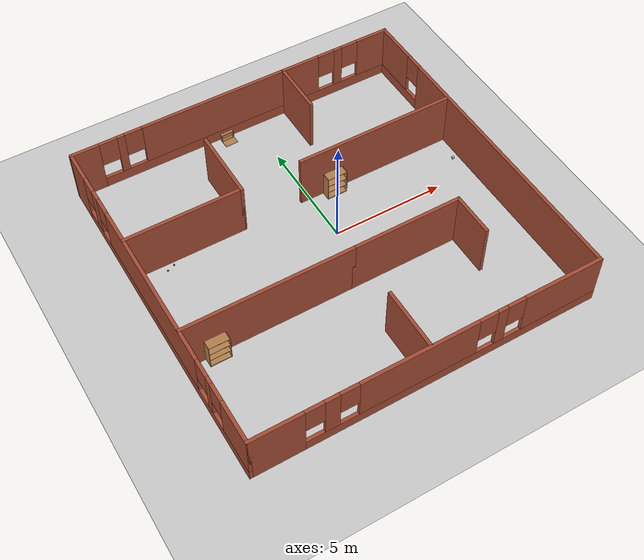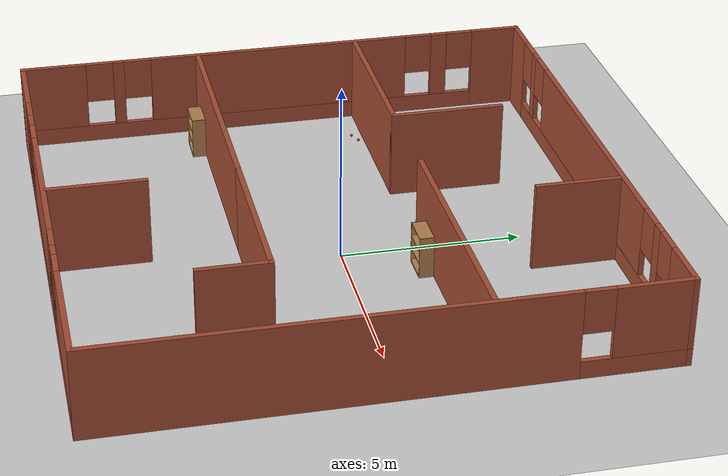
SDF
<sdf version="1.7">
 <world name="default">
  <model name="Untitled">
   <pose>-0.70055 -0.259285 0 0 -0 0</pose>
   <link name="Wall_0">
    <pose>-7.55 0 0 0 -0 -1.5708</pose>
    <visual name="Wall_0_Visual_0">
     <pose>-6.87927 0 1.25 0 -0 0</pose>
     <geometry><box><size>1.49145 0.15 2.5</size></box></geometry>
     <material>
      <script><uri>file://media/materials/scripts/gazebo.material</uri><name>Gazebo/Bricks</name></script>
      <ambient>1 1 1 1</ambient>
     </material>
     <meta><layer>0</layer></meta>
    </visual>
    <collision name="Wall_0_Collision_0">
     <geometry><box><size>1.49145 0.15 2.5</size></box></geometry>
     <pose>-6.87927 0 1.25 0 -0 0</pose>
    </collision>
    <visual name="Wall_0_Visual_1">
     <pose>0.745725 0 0.25 0 -0 0</pose>
     <geometry><box><size>13.7586 0.15 0.5</size></box></geometry>
     <material>
      <script><uri>file://media/materials/scripts/gazebo.material</uri><name>Gazebo/Bricks</name></script>
      <ambient>1 1 1 1</ambient>
     </material>
     <meta><layer>0</layer></meta>
    </visual>
    <collision name="Wall_0_Collision_1">
     <geometry><box><size>13.7586 0.15 0.5</size></box></geometry>
     <pose>0.745725 0 0.25 0 -0 0</pose>
    </collision>
    <visual name="Wall_0_Visual_2">
     <pose>-5.08626 0 1.5 0 -0 0</pose>
     <geometry><box><size>0.494579 0.15 2</size></box></geometry>
     <material>
      <script><uri>file://media/materials/scripts/gazebo.material</uri><name>Gazebo/Bricks</name></script>
      <ambient>1 1 1 1</ambient>
     </material>
     <meta><layer>0</layer></meta>
    </visual>
    <collision name="Wall_0_Collision_2">
     <geometry><box><size>0.494579 0.15 2</size></box></geometry>
     <pose>-5.08626 0 1.5 0 -0 0</pose>
    </collision>
    <visual name="Wall_0_Visual_3">
     <pose>-0.130454 0 1.5 0 -0 0</pose>
     <geometry><box><size>7.81704 0.15 2</size></box></geometry>
     <material>
      <script><uri>file://media/materials/scripts/gazebo.material</uri><name>Gazebo/Bricks</name></script>
      <ambient>1 1 1 1</ambient>
     </material>
     <meta><layer>0</layer></meta>
    </visual>
    <collision name="Wall_0_Collision_3">
     <geometry><box><size>7.81704 0.15 2</size></box></geometry>
     <pose>-0.130454 0 1.5 0 -0 0</pose>
    </collision>
    <visual name="Wall_0_Visual_4">
     <pose>4.74444 0 1.5 0 -0 0</pose>
     <geometry><box><size>0.332756 0.15 2</size></box></geometry>
     <material>
      <script><uri>file://media/materials/scripts/gazebo.material</uri><name>Gazebo/Bricks</name></script>
      <ambient>1 1 1 1</ambient>
     </material>
     <meta><layer>0</layer></meta>
    </visual>
    <collision name="Wall_0_Collision_4">
     <geometry><box><size>0.332756 0.15 2</size></box></geometry>
     <pose>4.74444 0 1.5 0 -0 0</pose>
    </collision>
    <visual name="Wall_0_Visual_5">
     <pose>6.66791 0 1.5 0 -0 0</pose>
     <geometry><box><size>1.91418 0.15 2</size></box></geometry>
     <material>
      <script><uri>file://media/materials/scripts/gazebo.material</uri><name>Gazebo/Bricks</name></script>
      <ambient>1 1 1 1</ambient>
     </material>
     <meta><layer>0</layer></meta>
    </visual>
    <collision name="Wall_0_Collision_5">
     <geometry><box><size>1.91418 0.15 2</size></box></geometry>
     <pose>6.66791 0 1.5 0 -0 0</pose>
    </collision>
    <visual name="Wall_0_Visual_6">
     <pose>-5.73355 0 1.9 0 -0 0</pose>
     <geometry><box><size>0.8 0.15 1.2</size></box></geometry>
     <material>
      <script><uri>file://media/materials/scripts/gazebo.material</uri><name>Gazebo/Bricks</name></script>
      <ambient>1 1 1 1</ambient>
     </material>
     <meta><layer>0</layer></meta>
    </visual>
    <collision name="Wall_0_Collision_6">
     <geometry><box><size>0.8 0.15 1.2</size></box></geometry>
     <pose>-5.73355 0 1.9 0 -0 0</pose>
    </collision>
    <visual name="Wall_0_Visual_7">
     <pose>-4.43897 0 1.9 0 -0 0</pose>
     <geometry><box><size>0.8 0.15 1.2</size></box></geometry>
     <material>
      <script><uri>file://media/materials/scripts/gazebo.material</uri><name>Gazebo/Bricks</name></script>
      <ambient>1 1 1 1</ambient>
     </material>
     <meta><layer>0</layer></meta>
    </visual>
    <collision name="Wall_0_Collision_7">
     <geometry><box><size>0.8 0.15 1.2</size></box></geometry>
     <pose>-4.43897 0 1.9 0 -0 0</pose>
    </collision>
    <visual name="Wall_0_Visual_8">
     <pose>4.17807 0 1.9 0 -0 0</pose>
     <geometry><box><size>0.8 0.15 1.2</size></box></geometry>
     <material>
      <script><uri>file://media/materials/scripts/gazebo.material</uri><name>Gazebo/Bricks</name></script>
      <ambient>1 1 1 1</ambient>
     </material>
     <meta><layer>0</layer></meta>
    </visual>
    <collision name="Wall_0_Collision_8">
     <geometry><box><size>0.8 0.15 1.2</size></box></geometry>
     <pose>4.17807 0 1.9 0 -0 0</pose>
    </collision>
    <visual name="Wall_0_Visual_9">
     <pose>5.31082 0 1.9 0 -0 0</pose>
     <geometry><box><size>0.8 0.15 1.2</size></box></geometry>
     <material>
      <script><uri>file://media/materials/scripts/gazebo.material</uri><name>Gazebo/Bricks</name></script>
      <ambient>1 1 1 1</ambient>
     </material>
     <meta><layer>0</layer></meta>
    </visual>
    <collision name="Wall_0_Collision_9">
     <geometry><box><size>0.8 0.15 1.2</size></box></geometry>
     <pose>5.31082 0 1.9 0 -0 0</pose>
    </collision>
   </link>
   <link name="Wall_11">
    <collision name="Wall_11_Collision">
     <geometry><box><size>2.5 0.15 2.5</size></box></geometry>
     <pose>0 0 1.25 0 -0 0</pose>
    </collision>
    <visual name="Wall_11_Visual">
     <pose>0 0 1.25 0 -0 0</pose>
     <geometry><box><size>2.5 0.15 2.5</size></box></geometry>
     <material>
      <script><uri>file://media/materials/scripts/gazebo.material</uri><name>Gazebo/Bricks</name></script>
      <ambient>1 1 1 1</ambient>
     </material>
     <meta><layer>0</layer></meta>
    </visual>
    <pose>2.33157 6.36777 0 0 -0 -1.5708</pose>
   </link>
   <link name="Wall_13">
    <collision name="Wall_13_Collision">
     <geometry><box><size>7.25 0.15 2.5</size></box></geometry>
     <pose>0 0 1.25 0 -0 0</pose>
    </collision>
    <visual name="Wall_13_Visual">
     <pose>0 0 1.25 0 -0 0</pose>
     <geometry><box><size>7.25 0.15 2.5</size></box></geometry>
     <material>
      <script><uri>file://media/materials/scripts/gazebo.material</uri><name>Gazebo/Bricks</name></script>
      <ambient>1 1 1 1</ambient>
     </material>
     <meta><layer>0</layer></meta>
    </visual>
    <pose>3.89013 2.52597 0 0 -0 3.14159</pose>
   </link>
   <link name="Wall_15">
    <collision name="Wall_15_Collision">
     <geometry><box><size>7.5 0.15 2.5</size></box></geometry>
     <pose>0 0 1.25 0 -0 0</pose>
    </collision>
    <visual name="Wall_15_Visual">
     <pose>0 0 1.25 0 -0 0</pose>
     <geometry><box><size>7.5 0.15 2.5</size></box></geometry>
     <material>
      <script><uri>file://media/materials/scripts/gazebo.material</uri><name>Gazebo/Bricks</name></script>
      <ambient>1 1 1 1</ambient>
     </material>
     <meta><layer>0</layer></meta>
    </visual>
    <pose>-3.84578 -2.35756 0 0 -0 0</pose>
   </link>
   <link name="Wall_17">
    <collision name="Wall_17_Collision">
     <geometry><box><size>2.75 0.15 2.5</size></box></geometry>
     <pose>0 0 1.25 0 -0 0</pose>
    </collision>
    <visual name="Wall_17_Visual">
     <pose>0 0 1.25 0 -0 0</pose>
     <geometry><box><size>2.75 0.15 2.5</size></box></geometry>
     <material>
      <script><uri>file://media/materials/scripts/gazebo.material</uri><name>Gazebo/Bricks</name></script>
      <ambient>1 1 1 1</ambient>
     </material>
     <meta><layer>0</layer></meta>
    </visual>
    <pose>-0.117405 -6.15497 0 0 -0 1.5708</pose>
   </link>
   <link name="Wall_19">
    <collision name="Wall_19_Collision">
     <geometry><box><size>5 0.15 2.5</size></box></geometry>
     <pose>0 0 1.25 0 -0 0</pose>
    </collision>
    <visual name="Wall_19_Visual">
     <pose>0 0 1.25 0 -0 0</pose>
     <geometry><box><size>5 0.15 2.5</size></box></geometry>
     <material>
      <script><uri>file://media/materials/scripts/gazebo.material</uri><name>Gazebo/Bricks</name></script>
      <ambient>1 1 1 1</ambient>
     </material>
     <meta><layer>0</layer></meta>
    </visual>
    <pose>2.25422 -2.35756 0 0 -0 0</pose>
   </link>
   <link name="Wall_2">
    <pose>-0 -7.55 0 0 -0 0</pose>
    <visual name="Wall_2_Visual_0">
     <pose>-6.48153 0 1.25 0 -0 0</pose>
     <geometry><box><size>2.28693 0.15 2.5</size></box></geometry>
     <material>
      <script><uri>file://media/materials/scripts/gazebo.material</uri><name>Gazebo/Bricks</name></script>
      <ambient>1 1 1 1</ambient>
     </material>
     <meta><layer>0</layer></meta>
    </visual>
    <collision name="Wall_2_Collision_0">
     <geometry><box><size>2.28693 0.15 2.5</size></box></geometry>
     <pose>-6.48153 0 1.25 0 -0 0</pose>
    </collision>
    <visual name="Wall_2_Visual_1">
     <pose>1.14347 0 0.25 0 -0 0</pose>
     <geometry><box><size>12.9631 0.15 0.5</size></box></geometry>
     <material>
      <script><uri>file://media/materials/scripts/gazebo.material</uri><name>Gazebo/Bricks</name></script>
      <ambient>1 1 1 1</ambient>
     </material>
     <meta><layer>0</layer></meta>
    </visual>
    <collision name="Wall_2_Collision_1">
     <geometry><box><size>12.9631 0.15 0.5</size></box></geometry>
     <pose>1.14347 0 0.25 0 -0 0</pose>
    </collision>
    <visual name="Wall_2_Visual_2">
     <pose>-4.2301 0 1.5 0 -0 0</pose>
     <geometry><box><size>0.615945 0.15 2</size></box></geometry>
     <material>
      <script><uri>file://media/materials/scripts/gazebo.material</uri><name>Gazebo/Bricks</name></script>
      <ambient>1 1 1 1</ambient>
     </material>
     <meta><layer>0</layer></meta>
    </visual>
    <collision name="Wall_2_Collision_2">
     <geometry><box><size>0.615945 0.15 2</size></box></geometry>
     <pose>-4.2301 0 1.5 0 -0 0</pose>
    </collision>
    <visual name="Wall_2_Visual_3">
     <pose>-0.565642 0 1.5 0 -0 0</pose>
     <geometry><box><size>5.11296 0.15 2</size></box></geometry>
     <material>
      <script><uri>file://media/materials/scripts/gazebo.material</uri><name>Gazebo/Bricks</name></script>
      <ambient>1 1 1 1</ambient>
     </material>
     <meta><layer>0</layer></meta>
    </visual>
    <collision name="Wall_2_Collision_3">
     <geometry><box><size>5.11296 0.15 2</size></box></geometry>
     <pose>-0.565642 0 1.5 0 -0 0</pose>
    </collision>
    <visual name="Wall_2_Visual_4">
     <pose>3.0179 0 1.5 0 -0 0</pose>
     <geometry><box><size>0.454123 0.15 2</size></box></geometry>
     <material>
      <script><uri>file://media/materials/scripts/gazebo.material</uri><name>Gazebo/Bricks</name></script>
      <ambient>1 1 1 1</ambient>
     </material>
     <meta><layer>0</layer></meta>
    </visual>
    <collision name="Wall_2_Collision_4">
     <geometry><box><size>0.454123 0.15 2</size></box></geometry>
     <pose>3.0179 0 1.5 0 -0 0</pose>
    </collision>
    <visual name="Wall_2_Visual_5">
     <pose>5.83498 0 1.5 0 -0 0</pose>
     <geometry><box><size>3.58004 0.15 2</size></box></geometry>
     <material>
      <script><uri>file://media/materials/scripts/gazebo.material</uri><name>Gazebo/Bricks</name></script>
      <ambient>1 1 1 1</ambient>
     </material>
     <meta><layer>0</layer></meta>
    </visual>
    <collision name="Wall_2_Collision_5">
     <geometry><box><size>3.58004 0.15 2</size></box></geometry>
     <pose>5.83498 0 1.5 0 -0 0</pose>
    </collision>
    <visual name="Wall_2_Visual_6">
     <pose>-4.93807 0 1.9 0 -0 0</pose>
     <geometry><box><size>0.8 0.15 1.2</size></box></geometry>
     <material>
      <script><uri>file://media/materials/scripts/gazebo.material</uri><name>Gazebo/Bricks</name></script>
      <ambient>1 1 1 1</ambient>
     </material>
     <meta><layer>0</layer></meta>
    </visual>
    <collision name="Wall_2_Collision_6">
     <geometry><box><size>0.8 0.15 1.2</size></box></geometry>
     <pose>-4.93807 0 1.9 0 -0 0</pose>
    </collision>
    <visual name="Wall_2_Visual_7">
     <pose>-3.52212 0 1.9 0 -0 0</pose>
     <geometry><box><size>0.8 0.15 1.2</size></box></geometry>
     <material>
      <script><uri>file://media/materials/scripts/gazebo.material</uri><name>Gazebo/Bricks</name></script>
      <ambient>1 1 1 1</ambient>
     </material>
     <meta><layer>0</layer></meta>
    </visual>
    <collision name="Wall_2_Collision_7">
     <geometry><box><size>0.8 0.15 1.2</size></box></geometry>
     <pose>-3.52212 0 1.9 0 -0 0</pose>
    </collision>
    <visual name="Wall_2_Visual_8">
     <pose>2.39084 0 1.9 0 -0 0</pose>
     <geometry><box><size>0.8 0.15 1.2</size></box></geometry>
     <material>
      <script><uri>file://media/materials/scripts/gazebo.material</uri><name>Gazebo/Bricks</name></script>
      <ambient>1 1 1 1</ambient>
     </material>
     <meta><layer>0</layer></meta>
    </visual>
    <collision name="Wall_2_Collision_8">
     <geometry><box><size>0.8 0.15 1.2</size></box></geometry>
     <pose>2.39084 0 1.9 0 -0 0</pose>
    </collision>
    <visual name="Wall_2_Visual_9">
     <pose>3.64496 0 1.9 0 -0 0</pose>
     <geometry><box><size>0.8 0.15 1.2</size></box></geometry>
     <material>
      <script><uri>file://media/materials/scripts/gazebo.material</uri><name>Gazebo/Bricks</name></script>
      <ambient>1 1 1 1</ambient>
     </material>
     <meta><layer>0</layer></meta>
    </visual>
    <collision name="Wall_2_Collision_9">
     <geometry><box><size>0.8 0.15 1.2</size></box></geometry>
     <pose>3.64496 0 1.9 0 -0 0</pose>
    </collision>
   </link>
   <link name="Wall_20">
    <collision name="Wall_20_Collision">
     <geometry><box><size>2 0.15 2.5</size></box></geometry>
     <pose>0 0 1.25 0 -0 0</pose>
    </collision>
    <visual name="Wall_20_Visual">
     <pose>0 0 1.25 0 -0 0</pose>
     <geometry><box><size>2 0.15 2.5</size></box></geometry>
     <material>
      <script><uri>file://media/materials/scripts/gazebo.material</uri><name>Gazebo/Bricks</name></script>
      <ambient>1 1 1 1</ambient>
     </material>
     <meta><layer>0</layer></meta>
    </visual>
    <pose>4.67922 -3.28256 0 0 -0 -1.5708</pose>
   </link>
   <link name="Wall_4">
    <pose>7.55 0 0 0 -0 1.5708</pose>
    <visual name="Wall_4_Visual_0">
     <pose>-1.44914 0 1.25 0 -0 0</pose>
     <geometry><box><size>12.3517 0.15 2.5</size></box></geometry>
     <material>
      <script><uri>file://media/materials/scripts/gazebo.material</uri><name>Gazebo/Bricks</name></script>
      <ambient>1 1 1 1</ambient>
     </material>
     <meta><layer>0</layer></meta>
    </visual>
    <collision name="Wall_4_Collision_0">
     <geometry><box><size>12.3517 0.15 2.5</size></box></geometry>
     <pose>-1.44914 0 1.25 0 -0 0</pose>
    </collision>
    <visual name="Wall_4_Visual_1">
     <pose>6.17586 0 0.25 0 -0 0</pose>
     <geometry><box><size>2.89828 0.15 0.5</size></box></geometry>
     <material>
      <script><uri>file://media/materials/scripts/gazebo.material</uri><name>Gazebo/Bricks</name></script>
      <ambient>1 1 1 1</ambient>
     </material>
     <meta><layer>0</layer></meta>
    </visual>
    <collision name="Wall_4_Collision_1">
     <geometry><box><size>2.89828 0.15 0.5</size></box></geometry>
     <pose>6.17586 0 0.25 0 -0 0</pose>
    </collision>
    <visual name="Wall_4_Visual_2">
     <pose>6.57586 0 1.5 0 -0 0</pose>
     <geometry><box><size>2.09828 0.15 2</size></box></geometry>
     <material>
      <script><uri>file://media/materials/scripts/gazebo.material</uri><name>Gazebo/Bricks</name></script>
      <ambient>1 1 1 1</ambient>
     </material>
     <meta><layer>0</layer></meta>
    </visual>
    <collision name="Wall_4_Collision_2">
     <geometry><box><size>2.09828 0.15 2</size></box></geometry>
     <pose>6.57586 0 1.5 0 -0 0</pose>
    </collision>
    <visual name="Wall_4_Visual_3">
     <pose>5.12672 0 1.9 0 -0 0</pose>
     <geometry><box><size>0.8 0.15 1.2</size></box></geometry>
     <material>
      <script><uri>file://media/materials/scripts/gazebo.material</uri><name>Gazebo/Bricks</name></script>
      <ambient>1 1 1 1</ambient>
     </material>
     <meta><layer>0</layer></meta>
    </visual>
    <collision name="Wall_4_Collision_3">
     <geometry><box><size>0.8 0.15 1.2</size></box></geometry>
     <pose>5.12672 0 1.9 0 -0 0</pose>
    </collision>
   </link>
   <link name="Wall_6">
    <pose>-0 7.55 0 0 -0 0</pose>
    <visual name="Wall_6_Visual_0">
     <pose>-6.984 0 1.25 0 -0 0</pose>
     <geometry><box><size>1.28199 0.15 2.5</size></box></geometry>
     <material>
      <script><uri>file://media/materials/scripts/gazebo.material</uri><name>Gazebo/Bricks</name></script>
      <ambient>1 1 1 1</ambient>
     </material>
     <meta><layer>0</layer></meta>
    </visual>
    <collision name="Wall_6_Collision_0">
     <geometry><box><size>1.28199 0.15 2.5</size></box></geometry>
     <pose>-6.984 0 1.25 0 -0 0</pose>
    </collision>
    <visual name="Wall_6_Visual_1">
     <pose>0.640996 0 0.25 0 -0 0</pose>
     <geometry><box><size>13.968 0.15 0.5</size></box></geometry>
     <material>
      <script><uri>file://media/materials/scripts/gazebo.material</uri><name>Gazebo/Bricks</name></script>
      <ambient>1 1 1 1</ambient>
     </material>
     <meta><layer>0</layer></meta>
    </visual>
    <collision name="Wall_6_Collision_1">
     <geometry><box><size>13.968 0.15 0.5</size></box></geometry>
     <pose>0.640996 0 0.25 0 -0 0</pose>
    </collision>
    <visual name="Wall_6_Visual_2">
     <pose>-5.37663 0 1.5 0 -0 0</pose>
     <geometry><box><size>0.332756 0.15 2</size></box></geometry>
     <material>
      <script><uri>file://media/materials/scripts/gazebo.material</uri><name>Gazebo/Bricks</name></script>
      <ambient>1 1 1 1</ambient>
     </material>
     <meta><layer>0</layer></meta>
    </visual>
    <collision name="Wall_6_Collision_2">
     <geometry><box><size>0.332756 0.15 2</size></box></geometry>
     <pose>-5.37663 0 1.5 0 -0 0</pose>
    </collision>
    <visual name="Wall_6_Visual_3">
     <pose>-0.171694 0 1.5 0 -0 0</pose>
     <geometry><box><size>8.47712 0.15 2</size></box></geometry>
     <material>
      <script><uri>file://media/materials/scripts/gazebo.material</uri><name>Gazebo/Bricks</name></script>
      <ambient>1 1 1 1</ambient>
     </material>
     <meta><layer>0</layer></meta>
    </visual>
    <collision name="Wall_6_Collision_3">
     <geometry><box><size>8.47712 0.15 2</size></box></geometry>
     <pose>-0.171694 0 1.5 0 -0 0</pose>
    </collision>
    <visual name="Wall_6_Visual_4">
     <pose>5.0673 0 1.5 0 -0 0</pose>
     <geometry><box><size>0.400877 0.15 2</size></box></geometry>
     <material>
      <script><uri>file://media/materials/scripts/gazebo.material</uri><name>Gazebo/Bricks</name></script>
      <ambient>1 1 1 1</ambient>
     </material>
     <meta><layer>0</layer></meta>
    </visual>
    <collision name="Wall_6_Collision_4">
     <geometry><box><size>0.400877 0.15 2</size></box></geometry>
     <pose>5.0673 0 1.5 0 -0 0</pose>
    </collision>
    <visual name="Wall_6_Visual_5">
     <pose>6.84637 0 1.5 0 -0 0</pose>
     <geometry><box><size>1.55726 0.15 2</size></box></geometry>
     <material>
      <script><uri>file://media/materials/scripts/gazebo.material</uri><name>Gazebo/Bricks</name></script>
      <ambient>1 1 1 1</ambient>
     </material>
     <meta><layer>0</layer></meta>
    </visual>
    <collision name="Wall_6_Collision_5">
     <geometry><box><size>1.55726 0.15 2</size></box></geometry>
     <pose>6.84637 0 1.5 0 -0 0</pose>
    </collision>
    <visual name="Wall_6_Visual_6">
     <pose>-5.94301 0 1.9 0 -0 0</pose>
     <geometry><box><size>0.8 0.15 1.2</size></box></geometry>
     <material>
      <script><uri>file://media/materials/scripts/gazebo.material</uri><name>Gazebo/Bricks</name></script>
      <ambient>1 1 1 1</ambient>
     </material>
     <meta><layer>0</layer></meta>
    </visual>
    <collision name="Wall_6_Collision_6">
     <geometry><box><size>0.8 0.15 1.2</size></box></geometry>
     <pose>-5.94301 0 1.9 0 -0 0</pose>
    </collision>
    <visual name="Wall_6_Visual_7">
     <pose>-4.81025 0 1.9 0 -0 0</pose>
     <geometry><box><size>0.8 0.15 1.2</size></box></geometry>
     <material>
      <script><uri>file://media/materials/scripts/gazebo.material</uri><name>Gazebo/Bricks</name></script>
      <ambient>1 1 1 1</ambient>
     </material>
     <meta><layer>0</layer></meta>
    </visual>
    <collision name="Wall_6_Collision_7">
     <geometry><box><size>0.8 0.15 1.2</size></box></geometry>
     <pose>-4.81025 0 1.9 0 -0 0</pose>
    </collision>
    <visual name="Wall_6_Visual_8">
     <pose>4.46687 0 1.9 0 -0 0</pose>
     <geometry><box><size>0.8 0.15 1.2</size></box></geometry>
     <material>
      <script><uri>file://media/materials/scripts/gazebo.material</uri><name>Gazebo/Bricks</name></script>
      <ambient>1 1 1 1</ambient>
     </material>
     <meta><layer>0</layer></meta>
    </visual>
    <collision name="Wall_6_Collision_8">
     <geometry><box><size>0.8 0.15 1.2</size></box></geometry>
     <pose>4.46687 0 1.9 0 -0 0</pose>
    </collision>
    <visual name="Wall_6_Visual_9">
     <pose>5.66774 0 1.9 0 -0 0</pose>
     <geometry><box><size>0.8 0.15 1.2</size></box></geometry>
     <material>
      <script><uri>file://media/materials/scripts/gazebo.material</uri><name>Gazebo/Bricks</name></script>
      <ambient>1 1 1 1</ambient>
     </material>
     <meta><layer>0</layer></meta>
    </visual>
    <collision name="Wall_6_Collision_9">
     <geometry><box><size>0.8 0.15 1.2</size></box></geometry>
     <pose>5.66774 0 1.9 0 -0 0</pose>
    </collision>
   </link>
   <link name="Wall_8">
    <collision name="Wall_8_Collision">
     <geometry><box><size>5.25 0.15 2.5</size></box></geometry>
     <pose>0 0 1.25 0 -0 0</pose>
    </collision>
    <visual name="Wall_8_Visual">
     <pose>0 0 1.25 0 -0 0</pose>
     <geometry><box><size>5.25 0.15 2.5</size></box></geometry>
     <material>
      <script><uri>file://media/materials/scripts/gazebo.material</uri><name>Gazebo/Bricks</name></script>
      <ambient>1 1 1 1</ambient>
     </material>
     <meta><layer>0</layer></meta>
    </visual>
    <pose>-4.98744 2.44703 0 0 -0 0</pose>
   </link>
   <link name="Wall_9">
    <collision name="Wall_9_Collision">
     <geometry><box><size>3.25 0.15 2.5</size></box></geometry>
     <pose>0 0 1.25 0 -0 0</pose>
    </collision>
    <visual name="Wall_9_Visual">
     <pose>0 0 1.25 0 -0 0</pose>
     <geometry><box><size>3.25 0.15 2.5</size></box></geometry>
     <material>
      <script><uri>file://media/materials/scripts/gazebo.material</uri><name>Gazebo/Bricks</name></script>
      <ambient>1 1 1 1</ambient>
     </material>
     <meta><layer>0</layer></meta>
    </visual>
    <pose>-2.43744 3.99703 0 0 -0 1.5708</pose>
   </link>
   <static>1</static>
  </model>
  <model name="ground_plane">
   <static>1</static>
   <link name="link">
    <collision name="collision">
     <geometry><plane><normal>0 0 1</normal><size>100 100</size></plane></geometry>
     <surface>
      <contact><collide_bitmask>65535</collide_bitmask></contact>
      <friction><ode><mu>100</mu><mu2>50</mu2></ode></friction>
     </surface>
    </collision>
    <visual name="visual">
     <cast_shadows>0</cast_shadows>
     <geometry><plane><normal>0 0 1</normal><size>100 100</size></plane></geometry>
     <material>
      <script><uri>file://media/materials/scripts/gazebo.material</uri><name>Gazebo/Grey</name></script>
     </material>
    </visual>
   </link>
  </model>
  <model name="bookshelf_0">
   <static>1</static>
   <link name="link">
    <inertial><mass>1</mass></inertial>
    <collision name="back">
     <pose>0 0.005 0.6 0 -0 0</pose>
     <geometry><box><size>0.9 0.01 1.2</size></box></geometry>
    </collision>
    <visual name="visual1">
     <pose>0 0.005 0.6 0 -0 0</pose>
     <geometry><box><size>0.9 0.01 1.2</size></box></geometry>
     <material>
      <script><uri>file://media/materials/scripts/gazebo.material</uri><name>Gazebo/Wood</name></script>
     </material>
    </visual>
    <collision name="left_side">
     <pose>0.45 -0.195 0.6 0 -0 0</pose>
     <geometry><box><size>0.02 0.4 1.2</size></box></geometry>
    </collision>
    <visual name="visual2">
     <pose>0.45 -0.195 0.6 0 -0 0</pose>
     <geometry><box><size>0.02 0.4 1.2</size></box></geometry>
     <material>
      <script><uri>file://media/materials/scripts/gazebo.material</uri><name>Gazebo/Wood</name></script>
     </material>
    </visual>
    <collision name="right_side">
     <pose>-0.45 -0.195 0.6 0 -0 0</pose>
     <geometry><box><size>0.02 0.4 1.2</size></box></geometry>
    </collision>
    <visual name="visual3">
     <pose>-0.45 -0.195 0.6 0 -0 0</pose>
     <geometry><box><size>0.02 0.4 1.2</size></box></geometry>
     <material>
      <script><uri>file://media/materials/scripts/gazebo.material</uri><name>Gazebo/Wood</name></script>
     </material>
    </visual>
    <collision name="bottom">
     <pose>0 -0.195 0.03 0 -0 0</pose>
     <geometry><box><size>0.88 0.4 0.06</size></box></geometry>
    </collision>
    <visual name="visual4">
     <pose>0 -0.195 0.03 0 -0 0</pose>
     <geometry><box><size>0.88 0.4 0.06</size></box></geometry>
     <material>
      <script><uri>file://media/materials/scripts/gazebo.material</uri><name>Gazebo/Wood</name></script>
     </material>
    </visual>
    <collision name="top">
     <pose>0 -0.195 1.19 0 -0 0</pose>
     <geometry><box><size>0.88 0.4 0.02</size></box></geometry>
    </collision>
    <visual name="visual5">
     <pose>0 -0.195 1.19 0 -0 0</pose>
     <geometry><box><size>0.88 0.4 0.02</size></box></geometry>
     <material>
      <script><uri>file://media/materials/scripts/gazebo.material</uri><name>Gazebo/Wood</name></script>
     </material>
    </visual>
    <collision name="low_shelf">
     <pose>0 -0.195 0.43 0 -0 0</pose>
     <geometry><box><size>0.88 0.4 0.02</size></box></geometry>
    </collision>
    <visual name="visual6">
     <pose>0 -0.195 0.43 0 -0 0</pose>
     <geometry><box><size>0.88 0.4 0.02</size></box></geometry>
     <material>
      <script><uri>file://media/materials/scripts/gazebo.material</uri><name>Gazebo/Wood</name></script>
     </material>
    </visual>
    <collision name="high_shelf">
     <pose>0 -0.195 0.8 0 -0 0</pose>
     <geometry><box><size>0.88 0.4 0.02</size></box></geometry>
    </collision>
    <visual name="visual7">
     <pose>0 -0.195 0.8 0 -0 0</pose>
     <geometry><box><size>0.88 0.4 0.02</size></box></geometry>
     <material>
      <script><uri>file://media/materials/scripts/gazebo.material</uri><name>Gazebo/Wood</name></script>
     </material>
    </visual>
   </link>
   <pose>1.09582 2.17822 0 0 -0 0</pose>
  </model>
  <model name="cricket_ball">
   <link name="link">
    <pose>0 0 0.0375 0 -0 0</pose>
    <inertial>
     <mass>0.1467</mass>
     <inertia>
      <ixx>8.25187e-05</ixx>
      <ixy>0</ixy>
      <ixz>0</ixz>
      <iyy>8.25187e-05</iyy>
      <iyz>0</iyz>
      <izz>8.25187e-05</izz>
     </inertia>
    </inertial>
    <collision name="collision">
     <geometry><sphere><radius>0.0375</radius></sphere></geometry>
     <surface>
      <contact>
       <poissons_ratio>0.347</poissons_ratio>
       <elastic_modulus>8.8e+09</elastic_modulus>
       <ode><kp>100000</kp><kd>100</kd><max_vel>100</max_vel><min_depth>0.001</min_depth></ode>
      </contact>
      <friction>
       <torsional>
        <coefficient>1</coefficient>
        <use_patch_radius>0</use_patch_radius>
        <surface_radius>0.01</surface_radius>
       </torsional>
      </friction>
     </surface>
    </collision>
    <visual name="visual">
     <geometry><sphere><radius>0.0375</radius></sphere></geometry>
     <material>
      <script><uri>file://media/materials/scripts/gazebo.material</uri><name>Gazebo/Red</name></script>
     </material>
    </visual>
    <velocity_decay><linear>0</linear><angular>0.005</angular></velocity_decay>
   </link>
   <pose>-6.82278 1.80655 -0.001014 0 -0 0</pose>
  </model>
  <model name="cricket_ball_0">
   <link name="link">
    <pose>0 0 0.0375 0 -0 0</pose>
    <inertial>
     <mass>0.1467</mass>
     <inertia>
      <ixx>8.25187e-05</ixx>
      <ixy>0</ixy>
      <ixz>0</ixz>
      <iyy>8.25187e-05</iyy>
      <iyz>0</iyz>
      <izz>8.25187e-05</izz>
     </inertia>
    </inertial>
    <collision name="collision">
     <geometry><sphere><radius>0.0375</radius></sphere></geometry>
     <surface>
      <contact>
       <poissons_ratio>0.347</poissons_ratio>
       <elastic_modulus>8.8e+09</elastic_modulus>
       <ode><kp>100000</kp><kd>100</kd><max_vel>100</max_vel><min_depth>0.001</min_depth></ode>
      </contact>
      <friction>
       <torsional>
        <coefficient>1</coefficient>
        <use_patch_radius>0</use_patch_radius>
        <surface_radius>0.01</surface_radius>
       </torsional>
      </friction>
     </surface>
    </collision>
    <visual name="visual">
     <geometry><sphere><radius>0.0375</radius></sphere></geometry>
     <material>
      <script><uri>file://media/materials/scripts/gazebo.material</uri><name>Gazebo/Red</name></script>
     </material>
    </visual>
    <velocity_decay><linear>0</linear><angular>0.005</angular></velocity_decay>
   </link>
   <pose>-6.48442 1.94689 -0.001014 0 -0 0</pose>
  </model>
  <model name="depth_camera">
   <link name="link">
    <pose>0 0 0.05 0 -0 0</pose>
    <inertial>
     <mass>0.1</mass>
     <inertia>
      <ixx>0.000166667</ixx>
      <iyy>0.000166667</iyy>
      <izz>0.000166667</izz>
      <ixy>0</ixy>
      <ixz>0</ixz>
      <iyz>0</iyz>
     </inertia>
    </inertial>
    <collision name="collision"><geometry><box><size>0.1 0.1 0.1</size></box></geometry></collision>
    <visual name="visual"><geometry><box><size>0.1 0.1 0.1</size></box></geometry></visual>
    <sensor name="camera" type="depth">
     <camera>
      <horizontal_fov>1.047</horizontal_fov>
      <image><width>320</width><height>240</height></image>
      <clip><near>0.1</near><far>100</far></clip>
     </camera>
     <always_on>1</always_on>
     <update_rate>30</update_rate>
     <visualize>1</visualize>
    </sensor>
   </link>
   <pose>6.50481 1.03746 -7e-06 0 2.2e-05 2e-06</pose>
  </model>
  <model name="beer">
   <link name="link">
    <pose>0 0 0.115 0 -0 0</pose>
    <inertial>
     <mass>0.39</mass>
     <inertia><ixx>0.00058</ixx><ixy>0</ixy><ixz>0</ixz><iyy>0.00058</iyy><iyz>0</iyz><izz>0.00019</izz></inertia>
    </inertial>
    <collision name="collision">
     <geometry><cylinder><radius>0.055</radius><length>0.23</length></cylinder></geometry>
    </collision>
    <visual name="visual">
     <geometry><cylinder><radius>0.055</radius><length>0.23</length></cylinder></geometry>
     <material>
      <script>
       <uri>model://beer/materials/scripts</uri>
       <uri>model://beer/materials/textures</uri>
       <name>Beer/Diffuse</name>
      </script>
     </material>
    </visual>
   </link>
   <pose>-2.60462 -2.26172 -2e-06 1e-06 -0 -6.4e-05</pose>
  </model>
  <model name="wooden_case">
   <link name="base">
    <pose>0 0 0.024 0 -0 0</pose>
    <inertial>
     <pose>-0.022184 0 0.171592 0 -0 0</pose>
     <mass>3.96264</mass>
     <inertia>
      <ixx>0.213536</ixx>
      <ixy>0</ixy>
      <ixz>0.000779377</ixz>
      <iyy>0.0708943</iyy>
      <iyz>0</iyz>
      <izz>0.154604</izz>
     </inertia>
    </inertial>
    <collision name="collision_back">
     <pose>-0.053975 0 0.1778 0 -0 0</pose>
     <geometry><box><size>0.01905 0.5461 0.3175</size></box></geometry>
     <surface>
      <contact>
       <poissons_ratio>0.347</poissons_ratio>
       <elastic_modulus>8.8e+09</elastic_modulus>
       <ode><kp>100000</kp><kd>100</kd><max_vel>100</max_vel><min_depth>0.001</min_depth></ode>
      </contact>
      <friction>
       <torsional>
        <coefficient>1</coefficient>
        <use_patch_radius>0</use_patch_radius>
        <surface_radius>0.01</surface_radius>
       </torsional>
      </friction>
     </surface>
    </collision>
    <visual name="visual_back">
     <pose>-0.053975 0 0.1778 0 -0 0</pose>
     <geometry><box><size>0.01905 0.5461 0.3175</size></box></geometry>
     <material>
      <script><uri>file://media/materials/scripts/gazebo.material</uri><name>Gazebo/Wood</name></script>
     </material>
    </visual>
    <collision name="collision_bottom">
     <pose>0 0 0.009525 0 -0 0</pose>
     <geometry><box><size>0.127 0.5842 0.01905</size></box></geometry>
     <surface>
      <contact>
       <poissons_ratio>0.347</poissons_ratio>
       <elastic_modulus>8.8e+09</elastic_modulus>
       <ode><kp>100000</kp><kd>100</kd><max_vel>100</max_vel><min_depth>0.001</min_depth></ode>
      </contact>
      <friction>
       <torsional>
        <coefficient>1</coefficient>
        <use_patch_radius>0</use_patch_radius>
        <surface_radius>0.01</surface_radius>
       </torsional>
      </friction>
     </surface>
    </collision>
    <visual name="visual_bottom">
     <pose>0 0 0.009525 0 -0 0</pose>
     <geometry><box><size>0.127 0.5842 0.01905</size></box></geometry>
     <material>
      <script><uri>file://media/materials/scripts/gazebo.material</uri><name>Gazebo/Wood</name></script>
     </material>
    </visual>
    <collision name="collision_top">
     <pose>0 0 0.346075 0 -0 0</pose>
     <geometry><box><size>0.127 0.5842 0.01905</size></box></geometry>
     <surface>
      <contact>
       <poissons_ratio>0.347</poissons_ratio>
       <elastic_modulus>8.8e+09</elastic_modulus>
       <ode><kp>100000</kp><kd>100</kd><max_vel>100</max_vel><min_depth>0.001</min_depth></ode>
      </contact>
      <friction>
       <torsional>
        <coefficient>1</coefficient>
        <use_patch_radius>0</use_patch_radius>
        <surface_radius>0.01</surface_radius>
       </torsional>
      </friction>
     </surface>
    </collision>
    <visual name="visual_top">
     <pose>0 0 0.346075 0 -0 0</pose>
     <geometry><box><size>0.127 0.5842 0.01905</size></box></geometry>
     <material>
      <script><uri>file://media/materials/scripts/gazebo.material</uri><name>Gazebo/Wood</name></script>
     </material>
    </visual>
    <collision name="collision_left">
     <pose>0 -0.282575 0.1778 0 -0 0</pose>
     <geometry><box><size>0.127 0.01905 0.3175</size></box></geometry>
     <surface>
      <contact>
       <poissons_ratio>0.347</poissons_ratio>
       <elastic_modulus>8.8e+09</elastic_modulus>
       <ode><kp>100000</kp><kd>100</kd><max_vel>100</max_vel><min_depth>0.001</min_depth></ode>
      </contact>
      <friction>
       <torsional>
        <coefficient>1</coefficient>
        <use_patch_radius>0</use_patch_radius>
        <surface_radius>0.01</surface_radius>
       </torsional>
      </friction>
     </surface>
    </collision>
    <visual name="visual_left">
     <pose>0 -0.282575 0.1778 0 -0 0</pose>
     <geometry><box><size>0.127 0.01905 0.3175</size></box></geometry>
     <material>
      <script><uri>file://media/materials/scripts/gazebo.material</uri><name>Gazebo/Wood</name></script>
     </material>
    </visual>
    <collision name="collision_right">
     <pose>0 0.282575 0.1778 0 -0 0</pose>
     <geometry><box><size>0.127 0.01905 0.3175</size></box></geometry>
     <surface>
      <contact>
       <poissons_ratio>0.347</poissons_ratio>
       <elastic_modulus>8.8e+09</elastic_modulus>
       <ode><kp>100000</kp><kd>100</kd><max_vel>100</max_vel><min_depth>0.001</min_depth></ode>
      </contact>
      <friction>
       <torsional>
        <coefficient>1</coefficient>
        <use_patch_radius>0</use_patch_radius>
        <surface_radius>0.01</surface_radius>
       </torsional>
      </friction>
     </surface>
    </collision>
    <visual name="visual_right">
     <pose>0 0.282575 0.1778 0 -0 0</pose>
     <geometry><box><size>0.127 0.01905 0.3175</size></box></geometry>
     <material>
      <script><uri>file://media/materials/scripts/gazebo.material</uri><name>Gazebo/Wood</name></script>
     </material>
    </visual>
    <collision name="collision_block_left">
     <pose>0.0095 -0.2151 -0.012 0 -0 0</pose>
     <geometry><box><size>0.108 0.05 0.024</size></box></geometry>
     <surface>
      <contact>
       <poissons_ratio>0.347</poissons_ratio>
       <elastic_modulus>8.8e+09</elastic_modulus>
       <ode><kp>100000</kp><kd>100</kd><max_vel>100</max_vel><min_depth>0.001</min_depth></ode>
      </contact>
      <friction>
       <torsional>
        <coefficient>1</coefficient>
        <use_patch_radius>0</use_patch_radius>
        <surface_radius>0.01</surface_radius>
       </torsional>
      </friction>
     </surface>
    </collision>
    <visual name="visual_block_left">
     <pose>0.0095 -0.2151 -0.012 0 -0 0</pose>
     <geometry><box><size>0.108 0.05 0.024</size></box></geometry>
     <material>
      <script><uri>file://media/materials/scripts/gazebo.material</uri><name>Gazebo/Wood</name></script>
     </material>
    </visual>
    <collision name="collision_block_right">
     <pose>0.0095 0.2151 -0.012 0 -0 0</pose>
     <geometry><box><size>0.108 0.05 0.024</size></box></geometry>
     <surface>
      <contact>
       <poissons_ratio>0.347</poissons_ratio>
       <elastic_modulus>8.8e+09</elastic_modulus>
       <ode><kp>100000</kp><kd>100</kd><max_vel>100</max_vel><min_depth>0.001</min_depth></ode>
      </contact>
      <friction>
       <torsional>
        <coefficient>1</coefficient>
        <use_patch_radius>0</use_patch_radius>
        <surface_radius>0.01</surface_radius>
       </torsional>
      </friction>
     </surface>
    </collision>
    <visual name="visual_block_right">
     <pose>0.0095 0.2151 -0.012 0 -0 0</pose>
     <geometry><box><size>0.108 0.05 0.024</size></box></geometry>
     <material>
      <script><uri>file://media/materials/scripts/gazebo.material</uri><name>Gazebo/Wood</name></script>
     </material>
    </visual>
   </link>
   <link name="lid">
    <pose>0.243775 0 0.009525 0 -0 0</pose>
    <inertial>
     <mass>1.97874</mass>
     <inertia>
      <ixx>0.0563367</ixx>
      <ixy>0</ixy>
      <ixz>0</ixz>
      <iyy>0.020911</iyy>
      <iyz>0</iyz>
      <izz>0.0771281</izz>
     </inertia>
    </inertial>
    <collision name="collision">
     <geometry><box><size>0.3556 0.5842 0.01905</size></box></geometry>
     <surface>
      <contact>
       <poissons_ratio>0.347</poissons_ratio>
       <elastic_modulus>8.8e+09</elastic_modulus>
       <ode><kp>100000</kp><kd>100</kd><max_vel>100</max_vel><min_depth>0.001</min_depth></ode>
      </contact>
      <friction>
       <torsional>
        <coefficient>1</coefficient>
        <use_patch_radius>0</use_patch_radius>
        <surface_radius>0.01</surface_radius>
       </torsional>
      </friction>
     </surface>
    </collision>
    <visual name="visual">
     <geometry><box><size>0.3556 0.5842 0.01905</size></box></geometry>
     <material>
      <script><uri>file://media/materials/scripts/gazebo.material</uri><name>Gazebo/Wood</name></script>
     </material>
    </visual>
    <visual name="tee_nut_1">
     <pose>0.122 -0.216 0 0 -0 0</pose>
     <geometry><cylinder><radius>0.00635</radius><length>0.0192405</length></cylinder></geometry>
     <material>
      <script><uri>file://media/materials/scripts/gazebo.material</uri><name>Gazebo/Grey</name></script>
     </material>
    </visual>
    <visual name="tee_nut_2">
     <pose>0.122 -0.088 0 0 -0 0</pose>
     <geometry><cylinder><radius>0.00635</radius><length>0.0192405</length></cylinder></geometry>
     <material>
      <script><uri>file://media/materials/scripts/gazebo.material</uri><name>Gazebo/Grey</name></script>
     </material>
    </visual>
    <visual name="tee_nut_3">
     <pose>0.122 0.088 0 0 -0 0</pose>
     <geometry><cylinder><radius>0.00635</radius><length>0.0192405</length></cylinder></geometry>
     <material>
      <script><uri>file://media/materials/scripts/gazebo.material</uri><name>Gazebo/Grey</name></script>
     </material>
    </visual>
    <visual name="tee_nut_4">
     <pose>0.122 0.216 0 0 -0 0</pose>
     <geometry><cylinder><radius>0.00635</radius><length>0.0192405</length></cylinder></geometry>
     <material>
      <script><uri>file://media/materials/scripts/gazebo.material</uri><name>Gazebo/Grey</name></script>
     </material>
    </visual>
   </link>
   <joint name="lid_hinge" type="revolute">
    <pose>-0.1778 0 0.01905 0 -0 0</pose>
    <parent>base</parent>
    <child>lid</child>
    <axis>
     <xyz>0 1 0</xyz>
     <limit><upper>0.523599</upper><lower>-1.5708</lower></limit>
     <dynamics><spring_reference>0</spring_reference><spring_stiffness>0</spring_stiffness></dynamics>
    </axis>
   </joint>
   <pose>-1.38129 7.09384 -0.001057 0 -0.000421 -1.53627</pose>
  </model>
  <model name="bookshelf_1">
   <static>1</static>
   <link name="link">
    <inertial><mass>1</mass></inertial>
    <collision name="back">
     <pose>0 0.005 0.6 0 -0 0</pose>
     <geometry><box><size>0.9 0.01 1.2</size></box></geometry>
    </collision>
    <visual name="visual1">
     <pose>0 0.005 0.6 0 -0 0</pose>
     <geometry><box><size>0.9 0.01 1.2</size></box></geometry>
     <material>
      <script><uri>file://media/materials/scripts/gazebo.material</uri><name>Gazebo/Wood</name></script>
     </material>
    </visual>
    <collision name="left_side">
     <pose>0.45 -0.195 0.6 0 -0 0</pose>
     <geometry><box><size>0.02 0.4 1.2</size></box></geometry>
    </collision>
    <visual name="visual2">
     <pose>0.45 -0.195 0.6 0 -0 0</pose>
     <geometry><box><size>0.02 0.4 1.2</size></box></geometry>
     <material>
      <script><uri>file://media/materials/scripts/gazebo.material</uri><name>Gazebo/Wood</name></script>
     </material>
    </visual>
    <collision name="right_side">
     <pose>-0.45 -0.195 0.6 0 -0 0</pose>
     <geometry><box><size>0.02 0.4 1.2</size></box></geometry>
    </collision>
    <visual name="visual3">
     <pose>-0.45 -0.195 0.6 0 -0 0</pose>
     <geometry><box><size>0.02 0.4 1.2</size></box></geometry>
     <material>
      <script><uri>file://media/materials/scripts/gazebo.material</uri><name>Gazebo/Wood</name></script>
     </material>
    </visual>
    <collision name="bottom">
     <pose>0 -0.195 0.03 0 -0 0</pose>
     <geometry><box><size>0.88 0.4 0.06</size></box></geometry>
    </collision>
    <visual name="visual4">
     <pose>0 -0.195 0.03 0 -0 0</pose>
     <geometry><box><size>0.88 0.4 0.06</size></box></geometry>
     <material>
      <script><uri>file://media/materials/scripts/gazebo.material</uri><name>Gazebo/Wood</name></script>
     </material>
    </visual>
    <collision name="top">
     <pose>0 -0.195 1.19 0 -0 0</pose>
     <geometry><box><size>0.88 0.4 0.02</size></box></geometry>
    </collision>
    <visual name="visual5">
     <pose>0 -0.195 1.19 0 -0 0</pose>
     <geometry><box><size>0.88 0.4 0.02</size></box></geometry>
     <material>
      <script><uri>file://media/materials/scripts/gazebo.material</uri><name>Gazebo/Wood</name></script>
     </material>
    </visual>
    <collision name="low_shelf">
     <pose>0 -0.195 0.43 0 -0 0</pose>
     <geometry><box><size>0.88 0.4 0.02</size></box></geometry>
    </collision>
    <visual name="visual6">
     <pose>0 -0.195 0.43 0 -0 0</pose>
     <geometry><box><size>0.88 0.4 0.02</size></box></geometry>
     <material>
      <script><uri>file://media/materials/scripts/gazebo.material</uri><name>Gazebo/Wood</name></script>
     </material>
    </visual>
    <collision name="high_shelf">
     <pose>0 -0.195 0.8 0 -0 0</pose>
     <geometry><box><size>0.88 0.4 0.02</size></box></geometry>
    </collision>
    <visual name="visual7">
     <pose>0 -0.195 0.8 0 -0 0</pose>
     <geometry><box><size>0.88 0.4 0.02</size></box></geometry>
     <material>
      <script><uri>file://media/materials/scripts/gazebo.material</uri><name>Gazebo/Wood</name></script>
     </material>
    </visual>
   </link>
   <pose>-6.94245 -2.69284 0 0 -0 0</pose>
  </model>
 </world>
</sdf>
